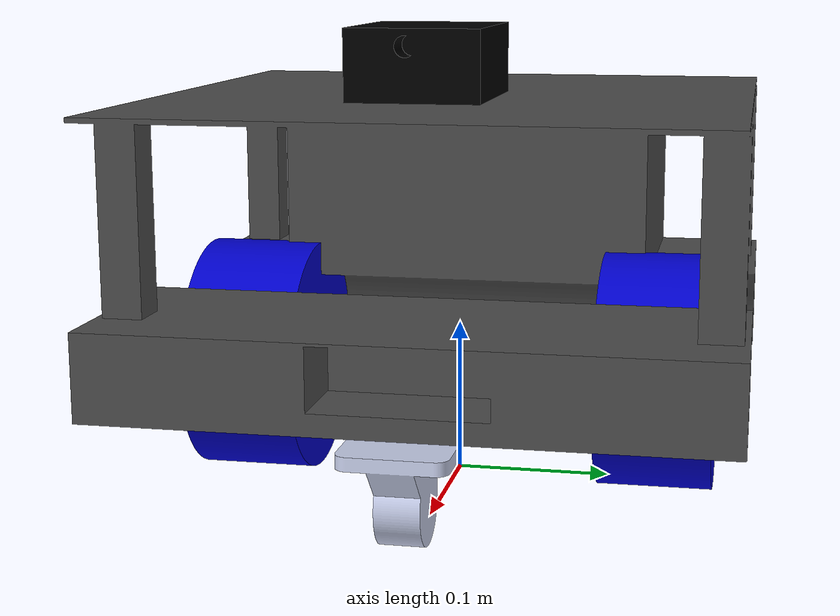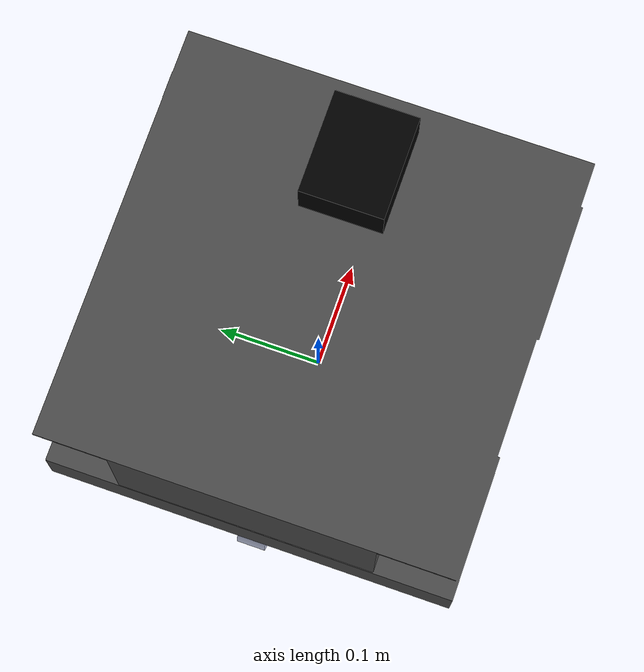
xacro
<?xml version="1.0"?>

<robot name="zbig" xmlns:xacro="http://ros.org/wiki/xacro">

  <!-- Check if Load Simulated or Real Hardware Interfaces -->
   <xacro:arg name="is_sim" default="true"/>

  <!-- Include physical aspects of the core differential drive robot minus the sensors -->
  <xacro:include filename="$(find zbig_description)/urdf/cbot_chassis.urdf.xacro" />
  <xacro:include filename="$(find zbig_description)/urdf/materials.xacro" />

   <!-- Include Plugins -->
  <xacro:include filename="$(find zbig_description)/urdf/cbot_gazebo_control.xacro" />
  <xacro:include filename="$(find zbig_description)/urdf/cbot_ros2_control.xacro" />

  <!-- Include the sensors -->
  <xacro:include filename="$(find zbig_description)/urdf/lidar_cbot.xacro" />
  <xacro:include filename="$(find zbig_description)/urdf/imu_cbot.xacro" />

</robot>

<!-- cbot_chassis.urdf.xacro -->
<robot name="zbig" xmlns:xacro="http://ros.org/wiki/xacro">

    <xacro:property name="wheel_radius" value="0.074"/>
    <xacro:property name="wheel_offset_y" value="0.147"/>
    <xacro:property name="wheel_offset_z" value="0.0"/>

    <xacro:property name="caster_wheel_radius" value="0.0315"/>
    <xacro:property name="caster_wheel_offset_x" value="0.168"/>
    <xacro:property name="caster_wheel_offset_y" value="0.0"/>
    <xacro:property name="caster_wheel_offset_z" value="${wheel_offset_z - wheel_radius + caster_wheel_radius}"/>

    <xacro:property name="chassis_mass" value="15.0"/>
    <xacro:property name="wheel_mass" value="0.08"/>
    <xacro:property name="caster_wheel_mass" value="0.03"/>

  <!-- BASE_FOOTPRINT LINK -->

  <link name="base_footprint"></link>

   <!-- JOINTS -->

   <joint name="base_joint" type="fixed">
    <parent link="base_footprint"/>
    <child link="base_link" />
    <origin xyz="0 0 ${wheel_radius}" rpy="0 0 0"/>
  </joint>

  <joint name="wheel_right_joint" type="continuous">
    <origin xyz="0 ${-wheel_offset_y} 0" rpy="0 0 0" />
    <parent link="base_link" />
    <child link="wheel_right_link" />
    <axis xyz="0 1 0" />
  </joint>

  <joint name="wheel_left_joint" type="continuous">
    <origin xyz="0 ${wheel_offset_y}  0" rpy="0 0 0" />
    <parent link="base_link" />
    <child link="wheel_left_link" />
    <axis xyz="0 1 0" />
  </joint>

  <joint name="caster_rear_joint" type="fixed">
    <origin xyz="${-caster_wheel_offset_x} ${-caster_wheel_offset_y} ${caster_wheel_offset_z}" rpy="1.57 0 1.57" />
    <parent link="base_link" />
    <child link="caster_rear_link" />
    <axis xyz="0 0 0" />
  </joint>

  <joint name="caster_front_joint" type="fixed">
    <origin xyz="${caster_wheel_offset_x} ${caster_wheel_offset_y} ${caster_wheel_offset_z}" rpy="1.57 0 1.57" />
    <parent link="base_link" />
    <child link="caster_front_link" />
    <axis xyz="0 0 0" />
  </joint>

<!-- LINKS -->

   <!-- BASE LINK -->

  <link name="base_link">
    <inertial>
      <origin xyz="-0.070489 -0.000718 0.040699" rpy="0.0 0.0 0.0" />
      <mass value="${chassis_mass}"/>
      <inertia ixx="0.011114" ixy="0.000188" ixz="-0.005821"
               iyy="0.017229" iyz="0.000127"
               izz="0.019734" />
    </inertial>
    <visual name='base_link_visual'>
      <origin xyz="0 0 0" rpy="0 0 0" />
      <geometry>
        <mesh filename="file://$(find zbig_description)/meshes/cbot/collision-chassis-center_short.stl" />
      </geometry>
      <material name="dark_grey"/>
    </visual>
    <collision>
      <origin xyz="0 0 0" rpy="0 0 0" />
      <geometry>
        <mesh filename="file://$(find zbig_description)/meshes/cbot/collision-chassis-center_short.stl" />
      </geometry>
    </collision>
  </link>

<!-- RIGHT WHEEL LINK -->

  <link name="wheel_right_link">
    <inertial>
      <origin xyz="0 -0.014 0" rpy="0 0 0" />
      <mass value="${wheel_mass}" />
      <inertia ixx="1.88176298336665E-05" ixy="-4.8444933029987E-10" ixz="1.88163708851143E-08"
               iyy="3.11510738647764E-05" iyz="-6.93560663069607E-11"
               izz="1.8801969558182E-05" />
    </inertial>
    <visual>
      <origin xyz="-0.0 0.014 0.0" rpy="1.57 0 0" />
      <geometry>
        <mesh filename="file://$(find zbig_description)/meshes/cbot/collision-6inch-wheel.stl" />
      </geometry>
      <material name="blue"/>
    </visual>
    <collision>
      <origin xyz="0 0 0" rpy="1.57 0 0" />
      <geometry>
        <sphere radius="${wheel_radius}"/>
      </geometry>
    </collision>
  </link>

  <!-- LEFT WHEEL LINK -->

  <link
    name="wheel_left_link">
    <inertial>
      <origin xyz="0 -0.014 0" rpy="0 0 0" />
      <mass value="${wheel_mass}" />
      <inertia ixx="1.8792911368909E-05"  ixy="3.31256392204584E-10" ixz="-1.14082001662767E-08"
               iyy="3.11510738759073E-05" iyz="-3.60499245082192E-10"
               izz="1.88266886146847E-05" />
    </inertial>
    <visual>
      <origin xyz="0 -0.014 0" rpy="-1.57 0 0" />
      <geometry>
        <mesh filename="file://$(find zbig_description)/meshes/cbot/collision-6inch-wheel.stl" />
      </geometry>
      <material name="blue"/>
    </visual>
    <collision>
      <origin xyz="0 0 0" rpy="-1.57 0 0" />
      <geometry>
        <sphere radius="${wheel_radius}"/>
      </geometry>
    </collision>
  </link>

  <!-- REAR CASTER WHEEL LINK -->

  <link name="caster_rear_link">
    <inertial>
      <origin xyz=".000112 -0.0155 -.00818" rpy="0 0 0" />
      <mass value="0.027976" />
      <inertia ixx="0.000019" ixy="0" ixz="0"
               iyy="0.000007"  iyz="0.000006"
               izz="0.000014" />
    </inertial>
    <visual>
      <origin xyz="0 0 0" rpy="0 0 0" />
      <geometry>
        <mesh filename="file://$(find zbig_description)/meshes/cbot/visual-caster-2inch.stl" />
      </geometry>
      <material name="silver"/>
    </visual>
    <collision>
      <origin xyz="0 0 0" rpy="0 0 0" />
      <geometry>
        <sphere radius="${caster_wheel_radius}"/>
      </geometry>
    </collision>
  </link>

  <!-- FRONT CASTER WHEEL LINK -->

  <link name="caster_front_link">
    <inertial>
      <origin xyz=".000112 -0.0155 -.00818" rpy="0 0 0" />
      <mass value="0.027976" />
      <inertia ixx="0.000019" ixy="0" ixz="0"
               iyy="0.000007"  iyz="0.000006"
               izz="0.000014" />
    </inertial>
    <visual>
      <origin xyz="0 0 0" rpy="0 0 0" />
      <geometry>
        <mesh filename="file://$(find zbig_description)/meshes/cbot/visual-caster-2inch.stl" />
      </geometry>
      <material name="silver"/>
    </visual>
    <collision>
      <origin xyz="0 0 0" rpy="0 0 0" />
      <geometry>
        <sphere radius="${caster_wheel_radius}"/>
      </geometry>
    </collision>
  </link>

    <!-- Wheels -->
  <gazebo reference="wheel_left_link">
    <mu1>1000000000000000.0</mu1>
    <mu2>1000000000000000.0</mu2>
    <kp>1000000000000.0</kp>
    <kd>10.0</kd>
    <minDepth>0.001</minDepth>
    <maxVel>0.1</maxVel>
    <fdir1>1 0 0</fdir1>
  </gazebo>

  <gazebo reference="wheel_right_link">
    <mu1>1000000000000000.0</mu1>
    <mu2>1000000000000000.0</mu2>
    <kp>1000000000000.0</kp>
    <kd>10.0</kd>
    <minDepth>0.001</minDepth>
    <maxVel>0.1</maxVel>
    <fdir1>1 0 0</fdir1>
  </gazebo>

  <!-- Caster Wheels -->
  <gazebo reference="caster_rear_link">
    <mu1>0.1</mu1>
    <mu2>0.1</mu2>
    <kp>1000000.0</kp>
    <kd>100.0</kd>
    <minDepth>0.001</minDepth>
    <maxVel>1.0</maxVel>
  </gazebo>

  <gazebo reference="caster_front_link">
    <mu1>0.1</mu1>
    <mu2>0.1</mu2>
    <kp>1000000.0</kp>
    <kd>100.0</kd>
    <minDepth>0.001</minDepth>
    <maxVel>1.0</maxVel>
  </gazebo>

</robot>

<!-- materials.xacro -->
<robot>

  <material name="black">
    <color rgba="0.0 0.0 0.0 1.0"/>
  </material>

  <material name="white">
    <color rgba="1.0 1.0 1.0 1.0"/>
  </material>

  <material name="red">
    <color rgba="0.8 0.0 0.0 1.0"/>
  </material>

  <material name="blue">
    <color rgba="0.0 0.0 0.8 1.0"/>
  </material>

  <material name="green">
    <color rgba="0.0 0.8 0.0 1.0"/>
  </material>

  <material name="grey">
    <color rgba="0.5 0.5 0.5 1.0"/>
  </material>

  <material name="orange">
    <color rgba="${255/255} ${108/255} ${10/255} 1.0"/>
  </material>

  <material name="brown">
    <color rgba="${222/255} ${207/255} ${195/255} 1.0"/>
  </material>

  <material name="silver">
    <color rgba="0.79 0.82 0.93 1"/>
  </material>

  <material name="dark_grey">
    <color rgba="0.3 0.3 0.3 1"/>
  </material>

</robot>

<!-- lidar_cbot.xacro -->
<robot name="zbig" xmlns:xacro="http://ros.org/wiki/xacro">

   <xacro:property name="lidar_roll" value="0.0"/>
   <xacro:property name="lidar_pitch" value="0.0"/>
   <xacro:property name="lidar_yaw" value="0.00"/>

  <!-- LIDAR JOINT -->

  <joint name="laser_joint" type="fixed">
    <origin xyz="0.127768 0.00 0.216947" rpy="${lidar_roll} ${lidar_pitch} ${lidar_yaw}" />
    <parent link="base_link" />
    <child link="laser_frame" />
    <axis xyz="0 0 0" />
  </joint>

  <!-- LIDAR LINK -->

  <link name="laser_frame">
    <inertial>
      <origin xyz="0.005399 -0.010876 0.002517" rpy="0 0 ${lidar_yaw}" />
      <mass value="0.07308" />
      <inertia ixx="0.000039" ixy="-0.000011" ixz="0.000003"
               iyy="0.000063" iyz="-0.000005"
               izz="0.000057" />
    </inertial>
    <visual>
      <origin xyz="0 0 0" rpy="1.57 0 3.14" />
      <geometry>
        <mesh filename="file://$(find zbig_description)/meshes/cbot/collision-lidar.stl" />
      </geometry>
      <material name="black"/>
    </visual>
    <collision>
      <origin xyz="0 0 0" rpy="${lidar_roll} ${lidar_pitch} ${lidar_yaw}" />
      <geometry>
        <mesh filename="file://$(find zbig_description)/meshes/cbot/collision-lidar.stl" />
      </geometry>
    </collision>
  </link>

     <!-- LIDAR Gazebo -->

   <gazebo reference="laser_frame">
    <sensor name="gpu_lidar" type="gpu_lidar">
      <always_on>true</always_on>
      <visualize>true</visualize>
      <topic>scan</topic>
      <update_rate>5</update_rate>
      <gz_frame_id>laser_frame</gz_frame_id>
      <lidar>
        <scan>
          <horizontal>
            <samples>360</samples>
            <resolution>1.00000</resolution>
            <min_angle>0</min_angle>
            <max_angle>6.28</max_angle>
          </horizontal>
        </scan>
        <range>
          <min>0.120000</min>
          <max>10.0</max>
          <resolution>0.02</resolution>
        </range>
        <noise>
          <type>gaussian</type>
          <mean>0.0</mean>
          <stddev>0.01</stddev>
        </noise>
      </lidar>
    </sensor>
  </gazebo>
</robot>

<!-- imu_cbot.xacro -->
<robot name="zbig" xmlns:xacro="http://ros.org/wiki/xacro">

   <xacro:property name="imu_roll" value="0.0"/>
   <xacro:property name="imu_pitch" value="0.0"/>
   <xacro:property name="imu_yaw" value="0.0"/>

  <!-- IMU JOINT -->

  <joint name="imu_joint" type="fixed">
    <origin xyz="0.0 0.1715 0.104" rpy="${imu_roll} ${imu_pitch} ${imu_yaw}" />
    <parent link="base_link" />
    <child link="imu_link" />
    <axis xyz="0 0 0" />
  </joint>

    <!-- IMU LINK -->

  <link name="imu_link">
    <inertial>
      <origin xyz="-0.00552433659106688 0.000168210391520346 0.000514000497342681" rpy="0 0 0" />
      <mass value="0.000528415362211671" />
      <inertia ixx="1.46176048428261E-08" ixy="1.40015117949421E-10" ixz="-1.99633872937403E-12"
               iyy="8.59662482954888E-09" iyz="7.52375112767959E-12"
               izz="2.30279421279312E-08" />
    </inertial>
    <visual>
      <origin xyz="0.125 0 -0.093625" rpy="0 0 0" />
      <geometry>
        <mesh filename="file://$(find zbig_description)/meshes/cbot/collision-imu.stl" />
      </geometry>
      <material name="blue"/>
    </visual>
    <collision>
      <origin xyz="0.125 0 -0.093625" rpy="${imu_roll} ${imu_pitch} ${imu_yaw}" />
      <geometry>
        <mesh filename="file://$(find zbig_description)/meshes/cbot/collision-imu.stl" />
      </geometry>
    </collision>
  </link>

    <!-- Gazebo info -->
  <gazebo reference="imu_link">
    <sensor name="imu" type="imu">
        <always_on>true</always_on>
        <update_rate>100</update_rate>
        <gz_frame_id>imu_link</gz_frame_id>
        <topic>imu</topic>
        <imu>
          <angular_velocity>
            <x>
              <noise type="gaussian">
                <mean>0.0</mean>
                <stddev>2e-4</stddev>
              </noise>
            </x>
            <y>
              <noise type="gaussian">
                <mean>0.0</mean>
                <stddev>2e-4</stddev>
              </noise>
            </y>
            <z>
              <noise type="gaussian">
                <mean>0.0</mean>
                <stddev>2e-4</stddev>
              </noise>
            </z>
          </angular_velocity>
          <linear_acceleration>
            <x>
              <noise type="gaussian">
                <mean>0.0</mean>
                <stddev>1.7e-2</stddev>
              </noise>
            </x>
            <y>
              <noise type="gaussian">
                <mean>0.0</mean>
                <stddev>1.7e-2</stddev>
              </noise>
            </y>
            <z>
              <noise type="gaussian">
                <mean>0.0</mean>
                <stddev>1.7e-2</stddev>
              </noise>
            </z>
          </linear_acceleration>
        </imu>
    </sensor>
  </gazebo>
</robot>
